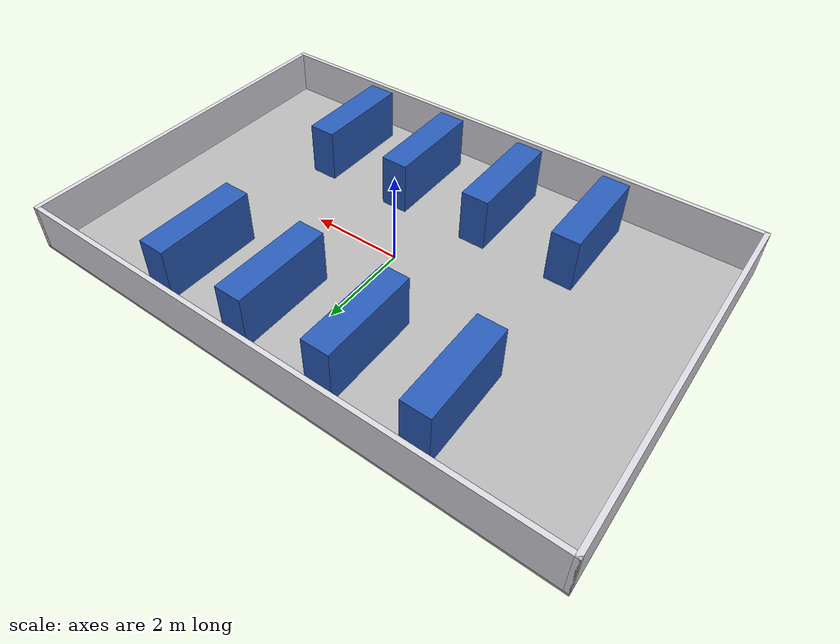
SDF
<?xml version='1.0' encoding='utf-8'?>
<sdf version="1.9">
  <world name="warehouse_cross_aisles">
    <physics name="research_physics" type="ode">
      <max_step_size>0.003</max_step_size>
      <real_time_factor>1.0</real_time_factor>
    </physics>
    <plugin filename="gz-sim-physics-system" name="gz::sim::systems::Physics" />
    <plugin filename="gz-sim-user-commands-system" name="gz::sim::systems::UserCommands" />
    <plugin filename="gz-sim-scene-broadcaster-system" name="gz::sim::systems::SceneBroadcaster" />
    <plugin filename="gz-sim-imu-system" name="gz::sim::systems::Imu" />
    <plugin filename="gz-sim-sensors-system" name="gz::sim::systems::Sensors">
      <render_engine>ogre2</render_engine>
    </plugin>
    <scene>
      <ambient>0.8 0.8 0.8 1</ambient>
      <background>0.18 0.22 0.28 1</background>
      <shadows>false</shadows>
      <grid>true</grid>
    </scene>
    <light name="sun" type="directional">
      <pose>0 0 10 0 0 0</pose>
      <diffuse>0.9 0.9 0.9 1</diffuse>
      <specular>0.2 0.2 0.2 1</specular>
      <direction>-0.5 0.2 -1.0</direction>
    </light>
    <model name="warehouse_cross_aisles_layout">
      <static>true</static>
      <link name="layout_link">
        <collision name="floor_collision">
          <pose>0 0 -0.025 0 0 0</pose>
          <geometry>
            <box>
              <size>12.0 8.0 0.05</size>
            </box>
          </geometry>
        </collision>
        <visual name="floor_visual">
          <pose>0 0 -0.025 0 0 0</pose>
          <geometry>
            <box>
              <size>12.0 8.0 0.05</size>
            </box>
          </geometry>
          <material>
            <ambient>0.72 0.72 0.72 1</ambient>
            <diffuse>0.72 0.72 0.72 1</diffuse>
          </material>
        </visual>
        <collision name="boundary_north">
          <pose>0.0 3.95 0.5 0 0 0</pose>
          <geometry>
            <box>
              <size>12.0 0.1 1.0</size>
            </box>
          </geometry>
        </collision>
        <visual name="boundary_north_visual">
          <pose>0.0 3.95 0.5 0 0 0</pose>
          <geometry>
            <box>
              <size>12.0 0.1 1.0</size>
            </box>
          </geometry>
          <material>
            <ambient>0.85 0.85 0.88 1</ambient>
            <diffuse>0.85 0.85 0.88 1</diffuse>
          </material>
        </visual>
        <collision name="boundary_south">
          <pose>0.0 -3.95 0.5 0 0 0</pose>
          <geometry>
            <box>
              <size>12.0 0.1 1.0</size>
            </box>
          </geometry>
        </collision>
        <visual name="boundary_south_visual">
          <pose>0.0 -3.95 0.5 0 0 0</pose>
          <geometry>
            <box>
              <size>12.0 0.1 1.0</size>
            </box>
          </geometry>
          <material>
            <ambient>0.85 0.85 0.88 1</ambient>
            <diffuse>0.85 0.85 0.88 1</diffuse>
          </material>
        </visual>
        <collision name="boundary_west">
          <pose>-5.95 0.0 0.5 0 0 0</pose>
          <geometry>
            <box>
              <size>0.1 8.0 1.0</size>
            </box>
          </geometry>
        </collision>
        <visual name="boundary_west_visual">
          <pose>-5.95 0.0 0.5 0 0 0</pose>
          <geometry>
            <box>
              <size>0.1 8.0 1.0</size>
            </box>
          </geometry>
          <material>
            <ambient>0.85 0.85 0.88 1</ambient>
            <diffuse>0.85 0.85 0.88 1</diffuse>
          </material>
        </visual>
        <collision name="boundary_east">
          <pose>5.95 0.0 0.5 0 0 0</pose>
          <geometry>
            <box>
              <size>0.1 8.0 1.0</size>
            </box>
          </geometry>
        </collision>
        <visual name="boundary_east_visual">
          <pose>5.95 0.0 0.5 0 0 0</pose>
          <geometry>
            <box>
              <size>0.1 8.0 1.0</size>
            </box>
          </geometry>
          <material>
            <ambient>0.85 0.85 0.88 1</ambient>
            <diffuse>0.85 0.85 0.88 1</diffuse>
          </material>
        </visual>
        <collision name="rack_a_south">
          <pose>-3.0 -2.4 0.6 0 0 0</pose>
          <geometry>
            <box>
              <size>0.6 2.2 1.2</size>
            </box>
          </geometry>
        </collision>
        <visual name="rack_a_south_visual">
          <pose>-3.0 -2.4 0.6 0 0 0</pose>
          <geometry>
            <box>
              <size>0.6 2.2 1.2</size>
            </box>
          </geometry>
          <material>
            <ambient>0.16 0.36 0.72 1</ambient>
            <diffuse>0.16 0.36 0.72 1</diffuse>
          </material>
        </visual>
        <collision name="rack_a_north">
          <pose>-3.0 2.4 0.6 0 0 0</pose>
          <geometry>
            <box>
              <size>0.6 2.2 1.2</size>
            </box>
          </geometry>
        </collision>
        <visual name="rack_a_north_visual">
          <pose>-3.0 2.4 0.6 0 0 0</pose>
          <geometry>
            <box>
              <size>0.6 2.2 1.2</size>
            </box>
          </geometry>
          <material>
            <ambient>0.16 0.36 0.72 1</ambient>
            <diffuse>0.16 0.36 0.72 1</diffuse>
          </material>
        </visual>
        <collision name="rack_b_south">
          <pose>-1.0 -2.4 0.6 0 0 0</pose>
          <geometry>
            <box>
              <size>0.6 2.2 1.2</size>
            </box>
          </geometry>
        </collision>
        <visual name="rack_b_south_visual">
          <pose>-1.0 -2.4 0.6 0 0 0</pose>
          <geometry>
            <box>
              <size>0.6 2.2 1.2</size>
            </box>
          </geometry>
          <material>
            <ambient>0.16 0.36 0.72 1</ambient>
            <diffuse>0.16 0.36 0.72 1</diffuse>
          </material>
        </visual>
        <collision name="rack_b_north">
          <pose>-1.0 2.4 0.6 0 0 0</pose>
          <geometry>
            <box>
              <size>0.6 2.2 1.2</size>
            </box>
          </geometry>
        </collision>
        <visual name="rack_b_north_visual">
          <pose>-1.0 2.4 0.6 0 0 0</pose>
          <geometry>
            <box>
              <size>0.6 2.2 1.2</size>
            </box>
          </geometry>
          <material>
            <ambient>0.16 0.36 0.72 1</ambient>
            <diffuse>0.16 0.36 0.72 1</diffuse>
          </material>
        </visual>
        <collision name="rack_c_south">
          <pose>1.0 -2.4 0.6 0 0 0</pose>
          <geometry>
            <box>
              <size>0.6 2.2 1.2</size>
            </box>
          </geometry>
        </collision>
        <visual name="rack_c_south_visual">
          <pose>1.0 -2.4 0.6 0 0 0</pose>
          <geometry>
            <box>
              <size>0.6 2.2 1.2</size>
            </box>
          </geometry>
          <material>
            <ambient>0.16 0.36 0.72 1</ambient>
            <diffuse>0.16 0.36 0.72 1</diffuse>
          </material>
        </visual>
        <collision name="rack_c_north">
          <pose>1.0 2.4 0.6 0 0 0</pose>
          <geometry>
            <box>
              <size>0.6 2.2 1.2</size>
            </box>
          </geometry>
        </collision>
        <visual name="rack_c_north_visual">
          <pose>1.0 2.4 0.6 0 0 0</pose>
          <geometry>
            <box>
              <size>0.6 2.2 1.2</size>
            </box>
          </geometry>
          <material>
            <ambient>0.16 0.36 0.72 1</ambient>
            <diffuse>0.16 0.36 0.72 1</diffuse>
          </material>
        </visual>
        <collision name="rack_d_south">
          <pose>3.0 -2.4 0.6 0 0 0</pose>
          <geometry>
            <box>
              <size>0.6 2.2 1.2</size>
            </box>
          </geometry>
        </collision>
        <visual name="rack_d_south_visual">
          <pose>3.0 -2.4 0.6 0 0 0</pose>
          <geometry>
            <box>
              <size>0.6 2.2 1.2</size>
            </box>
          </geometry>
          <material>
            <ambient>0.16 0.36 0.72 1</ambient>
            <diffuse>0.16 0.36 0.72 1</diffuse>
          </material>
        </visual>
        <collision name="rack_d_north">
          <pose>3.0 2.4 0.6 0 0 0</pose>
          <geometry>
            <box>
              <size>0.6 2.2 1.2</size>
            </box>
          </geometry>
        </collision>
        <visual name="rack_d_north_visual">
          <pose>3.0 2.4 0.6 0 0 0</pose>
          <geometry>
            <box>
              <size>0.6 2.2 1.2</size>
            </box>
          </geometry>
          <material>
            <ambient>0.16 0.36 0.72 1</ambient>
            <diffuse>0.16 0.36 0.72 1</diffuse>
          </material>
        </visual>
      </link>
    </model>
  </world>
</sdf>
